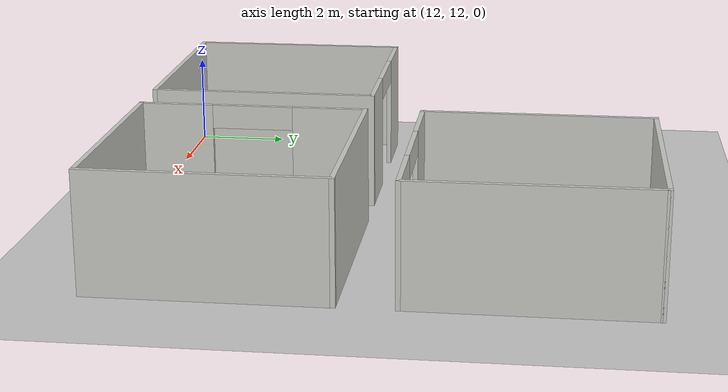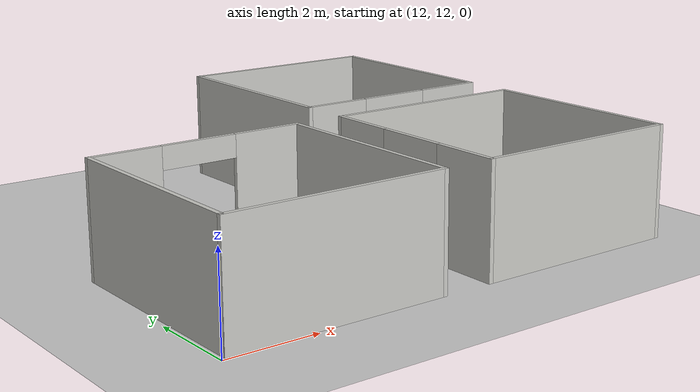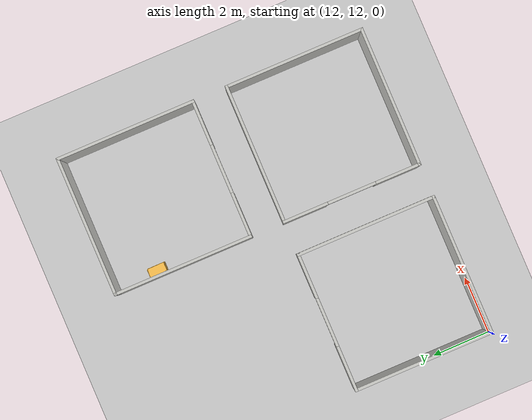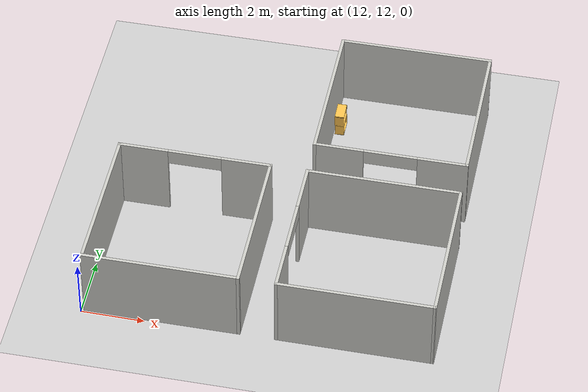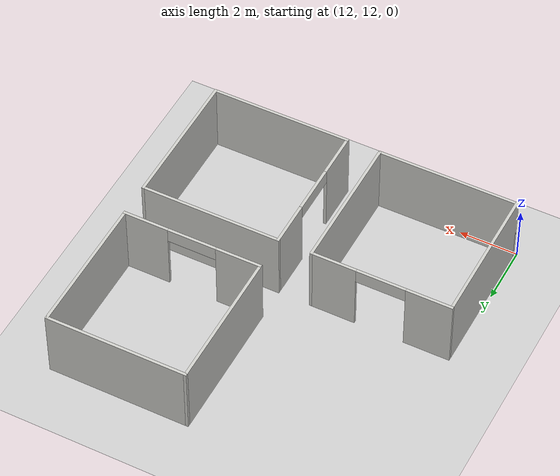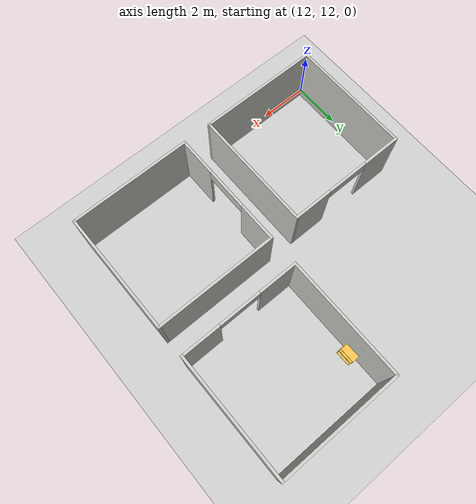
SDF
<sdf version="1.6">
 <world name="default">
  <model name="ground_plane">
   <static>1</static>
   <link name="link">
    <collision name="collision">
     <geometry><plane><normal>0 0 1</normal><size>100 100</size></plane></geometry>
     <surface><friction><ode><mu>100</mu><mu2>50</mu2></ode></friction></surface>
    </collision>
    <visual name="visual">
     <cast_shadows>0</cast_shadows>
     <geometry><plane><normal>0 0 1</normal><size>100 100</size></plane></geometry>
     <material>
      <script><uri>file://media/materials/scripts/gazebo.material</uri><name>Gazebo/Grey</name></script>
     </material>
    </visual>
   </link>
  </model>
  <model name="Wall_Cabinet_24x15M">
   <link name="Wall_41">
    <pose>0 0 0.01 0 -0 0</pose>
    <inertial>
     <mass>1.4983</mass>
     <inertia><ixx>0.011</ixx><iyy>0.0571</iyy><izz>0.0462</izz><ixy>0</ixy><ixz>0</ixz><iyz>0</iyz></inertia>
    </inertial>
    <collision name="Wall_41_Collision"><geometry><box><size>0.608 0.296 0.02</size></box></geometry></collision>
    <visual name="Wall_41_Visual">
     <geometry><box><size>0.608 0.296 0.02</size></box></geometry>
     <material>
      <script><uri>file://media/materials/scripts/gazebo.material</uri><name>Gazebo/Grey</name></script>
      <ambient>1 0.764706 0.305882 1</ambient>
     </material>
    </visual>
    <pose>0.000184 0.181953 0 0 -0 0</pose>
   </link>
   <joint name="41_43" type="fixed">
    <pose>-0.304 0 0 0 -0 0</pose>
    <parent>Wall_43</parent>
    <child>Wall_41</child>
    <axis>
     <xyz>0 0 1</xyz>
     <use_parent_model_frame>0</use_parent_model_frame>
     <limit><lower>-1e+16</lower><upper>1e+16</upper></limit>
    </axis>
   </joint>
   <joint name="41_45" type="fixed">
    <pose>0.304 0 0 0 -0 0</pose>
    <parent>Wall_45</parent>
    <child>Wall_41</child>
    <axis>
     <xyz>0 0 1</xyz>
     <use_parent_model_frame>0</use_parent_model_frame>
     <limit><lower>-1e+16</lower><upper>1e+16</upper></limit>
    </axis>
   </joint>
   <joint name="41_49" type="fixed">
    <pose>0 -0.148 0 0 -0 0</pose>
    <parent>Wall_49</parent>
    <child>Wall_41</child>
    <axis>
     <xyz>0 0 1</xyz>
     <use_parent_model_frame>0</use_parent_model_frame>
     <limit><lower>-1e+16</lower><upper>1e+16</upper></limit>
    </axis>
   </joint>
   <link name="Wall_43">
    <pose>-0.294 0 0.192 0 -0 0</pose>
    <inertial>
     <mass>0.9463</mass>
     <inertia><ixx>0.0069</ixx><iyy>0.0185</iyy><izz>0.0117</izz><ixy>0</ixy><ixz>0</ixz><iyz>0</iyz></inertia>
    </inertial>
    <collision name="Wall_43_Collision"><geometry><box><size>0.02 0.296 0.384</size></box></geometry></collision>
    <visual name="Wall_43_Visual">
     <geometry><box><size>0.02 0.296 0.384</size></box></geometry>
     <material>
      <script><uri>file://media/materials/scripts/gazebo.material</uri><name>Gazebo/Grey</name></script>
      <ambient>1 0.764706 0.305882 1</ambient>
     </material>
    </visual>
   </link>
   <link name="Wall_45">
    <pose>0.294 0 0.192 0 -0 0</pose>
    <inertial>
     <mass>0.9463</mass>
     <inertia><ixx>0.0069</ixx><iyy>0.0185</iyy><izz>0.0117</izz><ixy>0</ixy><ixz>0</ixz><iyz>0</iyz></inertia>
    </inertial>
    <collision name="Wall_45_Collision"><geometry><box><size>0.02 0.296 0.384</size></box></geometry></collision>
    <visual name="Wall_45_Visual">
     <geometry><box><size>0.02 0.296 0.384</size></box></geometry>
     <material>
      <script><uri>file://media/materials/scripts/gazebo.material</uri><name>Gazebo/Grey</name></script>
      <ambient>1 0.764706 0.305882 1</ambient>
     </material>
    </visual>
   </link>
   <link name="Wall_47">
    <pose>0 0 0.374 0 -0 0</pose>
    <inertial>
     <mass>1.4983</mass>
     <inertia><ixx>0.011</ixx><iyy>0.0571</iyy><izz>0.0462</izz><ixy>0</ixy><ixz>0</ixz><iyz>0</iyz></inertia>
    </inertial>
    <collision name="Wall_47_Collision"><geometry><box><size>0.608 0.296 0.02</size></box></geometry></collision>
    <visual name="Wall_47_Visual">
     <geometry><box><size>0.608 0.296 0.02</size></box></geometry>
     <material>
      <script><uri>file://media/materials/scripts/gazebo.material</uri><name>Gazebo/Grey</name></script>
      <ambient>1 0.764706 0.305882 1</ambient>
     </material>
    </visual>
   </link>
   <joint name="47_43" type="fixed">
    <pose>-0.304 0 0 0 -0 0</pose>
    <parent>Wall_43</parent>
    <child>Wall_47</child>
    <axis>
     <xyz>0 0 1</xyz>
     <use_parent_model_frame>0</use_parent_model_frame>
     <limit><lower>-1e+16</lower><upper>1e+16</upper></limit>
    </axis>
   </joint>
   <joint name="47_45" type="fixed">
    <pose>0.304 0 0 0 -0 0</pose>
    <parent>Wall_45</parent>
    <child>Wall_47</child>
    <axis>
     <xyz>0 0 1</xyz>
     <use_parent_model_frame>0</use_parent_model_frame>
     <limit><lower>-1e+16</lower><upper>1e+16</upper></limit>
    </axis>
   </joint>
   <joint name="47_49" type="fixed">
    <pose>0 -0.148 0 0 -0 0</pose>
    <parent>Wall_49</parent>
    <child>Wall_47</child>
    <axis>
     <xyz>0 0 1</xyz>
     <use_parent_model_frame>0</use_parent_model_frame>
     <limit><lower>-1e+16</lower><upper>1e+16</upper></limit>
    </axis>
   </joint>
   <link name="Wall_49">
    <pose>0 -0.138 0.19 0 -0 0</pose>
    <inertial>
     <mass>1.9108</mass>
     <inertia><ixx>0.0231</ixx><iyy>0.0582</iyy><izz>0.0811</izz><ixy>0</ixy><ixz>0</ixz><iyz>0</iyz></inertia>
    </inertial>
    <collision name="Wall_49_Collision"><geometry><box><size>0.604 0.02 0.38</size></box></geometry></collision>
    <visual name="Wall_49_Visual">
     <geometry><box><size>0.604 0.02 0.38</size></box></geometry>
     <material>
      <script><uri>file://media/materials/scripts/gazebo.material</uri><name>Gazebo/Grey</name></script>
      <ambient>1 0.764706 0.305882 1</ambient>
     </material>
    </visual>
   </link>
   <joint name="49_43" type="fixed">
    <pose>-0.302 0 0 0 -0 0</pose>
    <parent>Wall_41</parent>
    <child>Wall_49</child>
    <axis>
     <xyz>0 1 0</xyz>
     <use_parent_model_frame>0</use_parent_model_frame>
     <limit><lower>-1e+16</lower><upper>1e+16</upper></limit>
    </axis>
   </joint>
   <joint name="49_45" type="fixed">
    <pose>0.302 0 0 0 -0 0</pose>
    <parent>Wall_45</parent>
    <child>Wall_49</child>
    <axis>
     <xyz>0 1 0</xyz>
     <use_parent_model_frame>0</use_parent_model_frame>
     <limit><lower>-1e+16</lower><upper>1e+16</upper></limit>
    </axis>
   </joint>
   <static>1</static>
   <pose>18.3419 21.4172 0 0 0 -1.56675</pose>
  </model>
  <model name="Wall_Cabinet_24x15M_0">
   <link name="Wall_41">
    <pose>0 0 0.01 0 -0 0</pose>
    <inertial>
     <mass>1.4983</mass>
     <inertia><ixx>0.011</ixx><iyy>0.0571</iyy><izz>0.0462</izz><ixy>0</ixy><ixz>0</ixz><iyz>0</iyz></inertia>
    </inertial>
    <collision name="Wall_41_Collision"><geometry><box><size>0.608 0.296 0.02</size></box></geometry></collision>
    <visual name="Wall_41_Visual">
     <geometry><box><size>0.608 0.296 0.02</size></box></geometry>
     <material>
      <script><uri>file://media/materials/scripts/gazebo.material</uri><name>Gazebo/Grey</name></script>
      <ambient>1 0.764706 0.305882 1</ambient>
     </material>
    </visual>
    <pose>0.000184 0.181953 0 0 -0 0</pose>
   </link>
   <joint name="41_43" type="fixed">
    <pose>-0.304 0 0 0 -0 0</pose>
    <parent>Wall_43</parent>
    <child>Wall_41</child>
    <axis>
     <xyz>0 0 1</xyz>
     <use_parent_model_frame>0</use_parent_model_frame>
     <limit><lower>-1e+16</lower><upper>1e+16</upper></limit>
    </axis>
   </joint>
   <joint name="41_45" type="fixed">
    <pose>0.304 0 0 0 -0 0</pose>
    <parent>Wall_45</parent>
    <child>Wall_41</child>
    <axis>
     <xyz>0 0 1</xyz>
     <use_parent_model_frame>0</use_parent_model_frame>
     <limit><lower>-1e+16</lower><upper>1e+16</upper></limit>
    </axis>
   </joint>
   <joint name="41_49" type="fixed">
    <pose>0 -0.148 0 0 -0 0</pose>
    <parent>Wall_49</parent>
    <child>Wall_41</child>
    <axis>
     <xyz>0 0 1</xyz>
     <use_parent_model_frame>0</use_parent_model_frame>
     <limit><lower>-1e+16</lower><upper>1e+16</upper></limit>
    </axis>
   </joint>
   <link name="Wall_43">
    <pose>-0.294 0 0.192 0 -0 0</pose>
    <inertial>
     <mass>0.9463</mass>
     <inertia><ixx>0.0069</ixx><iyy>0.0185</iyy><izz>0.0117</izz><ixy>0</ixy><ixz>0</ixz><iyz>0</iyz></inertia>
    </inertial>
    <collision name="Wall_43_Collision"><geometry><box><size>0.02 0.296 0.384</size></box></geometry></collision>
    <visual name="Wall_43_Visual">
     <geometry><box><size>0.02 0.296 0.384</size></box></geometry>
     <material>
      <script><uri>file://media/materials/scripts/gazebo.material</uri><name>Gazebo/Grey</name></script>
      <ambient>1 0.764706 0.305882 1</ambient>
     </material>
    </visual>
   </link>
   <link name="Wall_45">
    <pose>0.294 0 0.192 0 -0 0</pose>
    <inertial>
     <mass>0.9463</mass>
     <inertia><ixx>0.0069</ixx><iyy>0.0185</iyy><izz>0.0117</izz><ixy>0</ixy><ixz>0</ixz><iyz>0</iyz></inertia>
    </inertial>
    <collision name="Wall_45_Collision"><geometry><box><size>0.02 0.296 0.384</size></box></geometry></collision>
    <visual name="Wall_45_Visual">
     <geometry><box><size>0.02 0.296 0.384</size></box></geometry>
     <material>
      <script><uri>file://media/materials/scripts/gazebo.material</uri><name>Gazebo/Grey</name></script>
      <ambient>1 0.764706 0.305882 1</ambient>
     </material>
    </visual>
   </link>
   <link name="Wall_47">
    <pose>0 0 0.374 0 -0 0</pose>
    <inertial>
     <mass>1.4983</mass>
     <inertia><ixx>0.011</ixx><iyy>0.0571</iyy><izz>0.0462</izz><ixy>0</ixy><ixz>0</ixz><iyz>0</iyz></inertia>
    </inertial>
    <collision name="Wall_47_Collision"><geometry><box><size>0.608 0.296 0.02</size></box></geometry></collision>
    <visual name="Wall_47_Visual">
     <geometry><box><size>0.608 0.296 0.02</size></box></geometry>
     <material>
      <script><uri>file://media/materials/scripts/gazebo.material</uri><name>Gazebo/Grey</name></script>
      <ambient>1 0.764706 0.305882 1</ambient>
     </material>
    </visual>
   </link>
   <joint name="47_43" type="fixed">
    <pose>-0.304 0 0 0 -0 0</pose>
    <parent>Wall_43</parent>
    <child>Wall_47</child>
    <axis>
     <xyz>0 0 1</xyz>
     <use_parent_model_frame>0</use_parent_model_frame>
     <limit><lower>-1e+16</lower><upper>1e+16</upper></limit>
    </axis>
   </joint>
   <joint name="47_45" type="fixed">
    <pose>0.304 0 0 0 -0 0</pose>
    <parent>Wall_45</parent>
    <child>Wall_47</child>
    <axis>
     <xyz>0 0 1</xyz>
     <use_parent_model_frame>0</use_parent_model_frame>
     <limit><lower>-1e+16</lower><upper>1e+16</upper></limit>
    </axis>
   </joint>
   <joint name="47_49" type="fixed">
    <pose>0 -0.148 0 0 -0 0</pose>
    <parent>Wall_49</parent>
    <child>Wall_47</child>
    <axis>
     <xyz>0 0 1</xyz>
     <use_parent_model_frame>0</use_parent_model_frame>
     <limit><lower>-1e+16</lower><upper>1e+16</upper></limit>
    </axis>
   </joint>
   <link name="Wall_49">
    <pose>0 -0.138 0.19 0 -0 0</pose>
    <inertial>
     <mass>1.9108</mass>
     <inertia><ixx>0.0231</ixx><iyy>0.0582</iyy><izz>0.0811</izz><ixy>0</ixy><ixz>0</ixz><iyz>0</iyz></inertia>
    </inertial>
    <collision name="Wall_49_Collision"><geometry><box><size>0.604 0.02 0.38</size></box></geometry></collision>
    <visual name="Wall_49_Visual">
     <geometry><box><size>0.604 0.02 0.38</size></box></geometry>
     <material>
      <script><uri>file://media/materials/scripts/gazebo.material</uri><name>Gazebo/Grey</name></script>
      <ambient>1 0.764706 0.305882 1</ambient>
     </material>
    </visual>
   </link>
   <joint name="49_43" type="fixed">
    <pose>-0.302 0 0 0 -0 0</pose>
    <parent>Wall_41</parent>
    <child>Wall_49</child>
    <axis>
     <xyz>0 1 0</xyz>
     <use_parent_model_frame>0</use_parent_model_frame>
     <limit><lower>-1e+16</lower><upper>1e+16</upper></limit>
    </axis>
   </joint>
   <joint name="49_45" type="fixed">
    <pose>0.302 0 0 0 -0 0</pose>
    <parent>Wall_45</parent>
    <child>Wall_49</child>
    <axis>
     <xyz>0 1 0</xyz>
     <use_parent_model_frame>0</use_parent_model_frame>
     <limit><lower>-1e+16</lower><upper>1e+16</upper></limit>
    </axis>
   </joint>
   <static>1</static>
   <pose>18.324 21.4327 0.389843 0 0 -1.55525</pose>
  </model>
  <model name="room_wall_3">
   <pose>20.5 20.5 0 0 0 -1.5708</pose>
   <link name="Wall_21">
    <collision name="Wall_21_Collision">
     <geometry><box><size>4.9 0.1 2.5</size></box></geometry>
     <pose>0 0 1.25 0 -0 0</pose>
    </collision>
    <visual name="Wall_21_Visual">
     <pose>0 0 1.25 0 -0 0</pose>
     <geometry><box><size>4.9 0.1 2.5</size></box></geometry>
     <material>
      <script><uri>file://media/materials/scripts/gazebo.material</uri><name>Gazebo/CeilingTiled</name></script>
      <ambient>1 0.764706 0.305882 1</ambient>
     </material>
     <meta><layer>0</layer></meta>
    </visual>
    <pose>0 2.4 0 0 -0 0</pose>
   </link>
   <link name="Wall_22">
    <pose>2.4 0 0 0 0 -1.5708</pose>
    <visual name="Wall_22_Visual_0">
     <pose>-1.64961 0 1.25 0 -0 0</pose>
     <geometry><box><size>1.60079 0.1 2.5</size></box></geometry>
     <material>
      <script><uri>file://media/materials/scripts/gazebo.material</uri><name>Gazebo/CeilingTiled</name></script>
      <ambient>1 0.764706 0.305882 1</ambient>
     </material>
     <meta><layer>0</layer></meta>
    </visual>
    <collision name="Wall_22_Collision_0">
     <geometry><box><size>1.60079 0.1 2.5</size></box></geometry>
     <pose>-1.64961 0 1.25 0 -0 0</pose>
    </collision>
    <visual name="Wall_22_Visual_1">
     <pose>1.65039 0 1.25 0 -0 0</pose>
     <geometry><box><size>1.59921 0.1 2.5</size></box></geometry>
     <material>
      <script><uri>file://media/materials/scripts/gazebo.material</uri><name>Gazebo/CeilingTiled</name></script>
      <ambient>1 0.764706 0.305882 1</ambient>
     </material>
     <meta><layer>0</layer></meta>
    </visual>
    <collision name="Wall_22_Collision_1">
     <geometry><box><size>1.59921 0.1 2.5</size></box></geometry>
     <pose>1.65039 0 1.25 0 -0 0</pose>
    </collision>
    <visual name="Wall_22_Visual_2">
     <pose>0.000786 0 2.25 0 -0 0</pose>
     <geometry><box><size>1.7 0.1 0.5</size></box></geometry>
     <material>
      <script><uri>file://media/materials/scripts/gazebo.material</uri><name>Gazebo/CeilingTiled</name></script>
      <ambient>1 0.764706 0.305882 1</ambient>
     </material>
     <meta><layer>0</layer></meta>
    </visual>
    <collision name="Wall_22_Collision_2">
     <geometry><box><size>1.7 0.1 0.5</size></box></geometry>
     <pose>0.000786 0 2.25 0 -0 0</pose>
    </collision>
   </link>
   <link name="Wall_23">
    <collision name="Wall_23_Collision">
     <geometry><box><size>4.9 0.1 2.5</size></box></geometry>
     <pose>0 0 1.25 0 -0 0</pose>
    </collision>
    <visual name="Wall_23_Visual">
     <pose>0 0 1.25 0 -0 0</pose>
     <geometry><box><size>4.9 0.1 2.5</size></box></geometry>
     <material>
      <script><uri>file://media/materials/scripts/gazebo.material</uri><name>Gazebo/CeilingTiled</name></script>
      <ambient>1 0.764706 0.305882 1</ambient>
     </material>
     <meta><layer>0</layer></meta>
    </visual>
    <pose>0 -2.4 0 0 -0 3.14159</pose>
   </link>
   <link name="Wall_24">
    <collision name="Wall_24_Collision">
     <geometry><box><size>4.9 0.1 2.5</size></box></geometry>
     <pose>0 0 1.25 0 -0 0</pose>
    </collision>
    <visual name="Wall_24_Visual">
     <pose>0 0 1.25 0 -0 0</pose>
     <geometry><box><size>4.9 0.1 2.5</size></box></geometry>
     <material>
      <script><uri>file://media/materials/scripts/gazebo.material</uri><name>Gazebo/CeilingTiled</name></script>
      <ambient>1 0.764706 0.305882 1</ambient>
     </material>
     <meta><layer>0</layer></meta>
    </visual>
    <pose>-2.4 0 0 0 -0 1.5708</pose>
   </link>
   <static>1</static>
  </model>
  <model name="room_wall_4">
   <pose>20.4999 14.5 0 0 -0 3.1407</pose>
   <link name="Wall_21">
    <collision name="Wall_21_Collision">
     <geometry><box><size>4.9 0.1 2.5</size></box></geometry>
     <pose>0 0 1.25 0 -0 0</pose>
    </collision>
    <visual name="Wall_21_Visual">
     <pose>0 0 1.25 0 -0 0</pose>
     <geometry><box><size>4.9 0.1 2.5</size></box></geometry>
     <material>
      <script><uri>file://media/materials/scripts/gazebo.material</uri><name>Gazebo/CeilingTiled</name></script>
      <ambient>1 0.764706 0.305882 1</ambient>
     </material>
     <meta><layer>0</layer></meta>
    </visual>
    <pose>0 2.4 0 0 -0 0</pose>
   </link>
   <link name="Wall_22">
    <pose>2.4 0 0 0 0 -1.5708</pose>
    <visual name="Wall_22_Visual_0">
     <pose>-1.64961 0 1.25 0 -0 0</pose>
     <geometry><box><size>1.60079 0.1 2.5</size></box></geometry>
     <material>
      <script><uri>file://media/materials/scripts/gazebo.material</uri><name>Gazebo/CeilingTiled</name></script>
      <ambient>1 0.764706 0.305882 1</ambient>
     </material>
     <meta><layer>0</layer></meta>
    </visual>
    <collision name="Wall_22_Collision_0">
     <geometry><box><size>1.60079 0.1 2.5</size></box></geometry>
     <pose>-1.64961 0 1.25 0 -0 0</pose>
    </collision>
    <visual name="Wall_22_Visual_1">
     <pose>1.65039 0 1.25 0 -0 0</pose>
     <geometry><box><size>1.59921 0.1 2.5</size></box></geometry>
     <material>
      <script><uri>file://media/materials/scripts/gazebo.material</uri><name>Gazebo/CeilingTiled</name></script>
      <ambient>1 0.764706 0.305882 1</ambient>
     </material>
     <meta><layer>0</layer></meta>
    </visual>
    <collision name="Wall_22_Collision_1">
     <geometry><box><size>1.59921 0.1 2.5</size></box></geometry>
     <pose>1.65039 0 1.25 0 -0 0</pose>
    </collision>
    <visual name="Wall_22_Visual_2">
     <pose>0.000786 0 2.25 0 -0 0</pose>
     <geometry><box><size>1.7 0.1 0.5</size></box></geometry>
     <material>
      <script><uri>file://media/materials/scripts/gazebo.material</uri><name>Gazebo/CeilingTiled</name></script>
      <ambient>1 0.764706 0.305882 1</ambient>
     </material>
     <meta><layer>0</layer></meta>
    </visual>
    <collision name="Wall_22_Collision_2">
     <geometry><box><size>1.7 0.1 0.5</size></box></geometry>
     <pose>0.000786 0 2.25 0 -0 0</pose>
    </collision>
   </link>
   <link name="Wall_23">
    <collision name="Wall_23_Collision">
     <geometry><box><size>4.9 0.1 2.5</size></box></geometry>
     <pose>0 0 1.25 0 -0 0</pose>
    </collision>
    <visual name="Wall_23_Visual">
     <pose>0 0 1.25 0 -0 0</pose>
     <geometry><box><size>4.9 0.1 2.5</size></box></geometry>
     <material>
      <script><uri>file://media/materials/scripts/gazebo.material</uri><name>Gazebo/CeilingTiled</name></script>
      <ambient>1 0.764706 0.305882 1</ambient>
     </material>
     <meta><layer>0</layer></meta>
    </visual>
    <pose>0 -2.4 0 0 -0 3.14159</pose>
   </link>
   <link name="Wall_24">
    <collision name="Wall_24_Collision">
     <geometry><box><size>4.9 0.1 2.5</size></box></geometry>
     <pose>0 0 1.25 0 -0 0</pose>
    </collision>
    <visual name="Wall_24_Visual">
     <pose>0 0 1.25 0 -0 0</pose>
     <geometry><box><size>4.9 0.1 2.5</size></box></geometry>
     <material>
      <script><uri>file://media/materials/scripts/gazebo.material</uri><name>Gazebo/CeilingTiled</name></script>
      <ambient>1 0.764706 0.305882 1</ambient>
     </material>
     <meta><layer>0</layer></meta>
    </visual>
    <pose>-2.4 0 0 0 -0 1.5708</pose>
   </link>
   <static>1</static>
  </model>
  <model name="room_wall_10">
   <pose>14.5341 14.5 0 0 -0 1.5708</pose>
   <link name="Wall_21">
    <collision name="Wall_21_Collision">
     <geometry><box><size>4.9 0.1 2.5</size></box></geometry>
     <pose>0 0 1.25 0 -0 0</pose>
    </collision>
    <visual name="Wall_21_Visual">
     <pose>0 0 1.25 0 -0 0</pose>
     <geometry><box><size>4.9 0.1 2.5</size></box></geometry>
     <material>
      <script><uri>file://media/materials/scripts/gazebo.material</uri><name>Gazebo/CeilingTiled</name></script>
      <ambient>1 0.764706 0.305882 1</ambient>
     </material>
     <meta><layer>0</layer></meta>
    </visual>
    <pose>0 2.4 0 0 -0 0</pose>
   </link>
   <link name="Wall_22">
    <pose>2.4 0 0 0 0 -1.5708</pose>
    <visual name="Wall_22_Visual_0">
     <pose>-1.64961 0 1.25 0 -0 0</pose>
     <geometry><box><size>1.60079 0.1 2.5</size></box></geometry>
     <material>
      <script><uri>file://media/materials/scripts/gazebo.material</uri><name>Gazebo/CeilingTiled</name></script>
      <ambient>1 0.764706 0.305882 1</ambient>
     </material>
     <meta><layer>0</layer></meta>
    </visual>
    <collision name="Wall_22_Collision_0">
     <geometry><box><size>1.60079 0.1 2.5</size></box></geometry>
     <pose>-1.64961 0 1.25 0 -0 0</pose>
    </collision>
    <visual name="Wall_22_Visual_1">
     <pose>1.65039 0 1.25 0 -0 0</pose>
     <geometry><box><size>1.59921 0.1 2.5</size></box></geometry>
     <material>
      <script><uri>file://media/materials/scripts/gazebo.material</uri><name>Gazebo/CeilingTiled</name></script>
      <ambient>1 0.764706 0.305882 1</ambient>
     </material>
     <meta><layer>0</layer></meta>
    </visual>
    <collision name="Wall_22_Collision_1">
     <geometry><box><size>1.59921 0.1 2.5</size></box></geometry>
     <pose>1.65039 0 1.25 0 -0 0</pose>
    </collision>
    <visual name="Wall_22_Visual_2">
     <pose>0.000786 0 2.25 0 -0 0</pose>
     <geometry><box><size>1.7 0.1 0.5</size></box></geometry>
     <material>
      <script><uri>file://media/materials/scripts/gazebo.material</uri><name>Gazebo/CeilingTiled</name></script>
      <ambient>1 0.764706 0.305882 1</ambient>
     </material>
     <meta><layer>0</layer></meta>
    </visual>
    <collision name="Wall_22_Collision_2">
     <geometry><box><size>1.7 0.1 0.5</size></box></geometry>
     <pose>0.000786 0 2.25 0 -0 0</pose>
    </collision>
   </link>
   <link name="Wall_23">
    <collision name="Wall_23_Collision">
     <geometry><box><size>4.9 0.1 2.5</size></box></geometry>
     <pose>0 0 1.25 0 -0 0</pose>
    </collision>
    <visual name="Wall_23_Visual">
     <pose>0 0 1.25 0 -0 0</pose>
     <geometry><box><size>4.9 0.1 2.5</size></box></geometry>
     <material>
      <script><uri>file://media/materials/scripts/gazebo.material</uri><name>Gazebo/CeilingTiled</name></script>
      <ambient>1 0.764706 0.305882 1</ambient>
     </material>
     <meta><layer>0</layer></meta>
    </visual>
    <pose>0 -2.4 0 0 -0 3.14159</pose>
   </link>
   <link name="Wall_24">
    <collision name="Wall_24_Collision">
     <geometry><box><size>4.9 0.1 2.5</size></box></geometry>
     <pose>0 0 1.25 0 -0 0</pose>
    </collision>
    <visual name="Wall_24_Visual">
     <pose>0 0 1.25 0 -0 0</pose>
     <geometry><box><size>4.9 0.1 2.5</size></box></geometry>
     <material>
      <script><uri>file://media/materials/scripts/gazebo.material</uri><name>Gazebo/CeilingTiled</name></script>
      <ambient>1 0.764706 0.305882 1</ambient>
     </material>
     <meta><layer>0</layer></meta>
    </visual>
    <pose>-2.4 0 0 0 -0 1.5708</pose>
   </link>
   <static>1</static>
  </model>
 </world>
</sdf>
